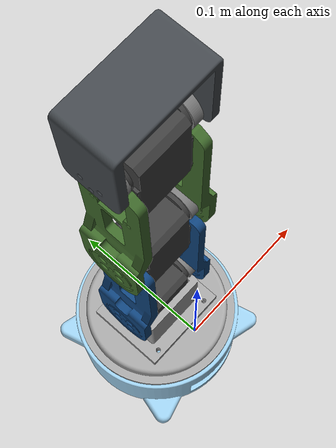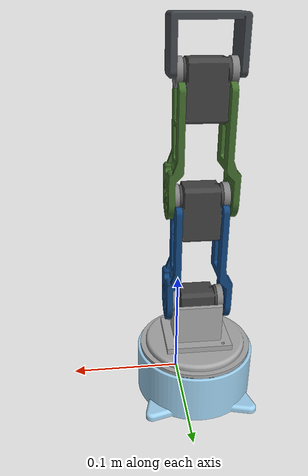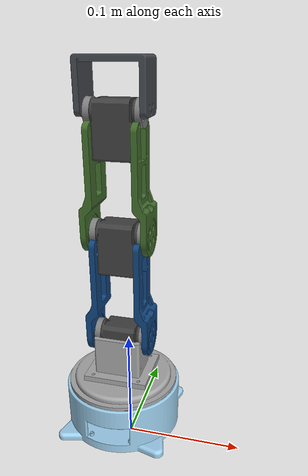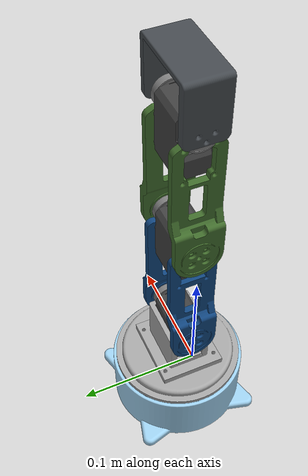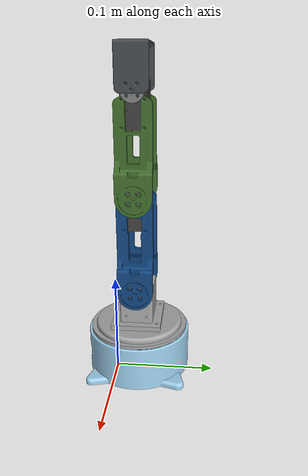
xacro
<?xml version="1.0"?>
<robot xmlns:xacro="http://www.ros.org/wiki/xacro" name="onshape_export">
    <xacro:arg name="initial_positions_file" default="initial_positions.yaml" />

    <!-- Import onshape_export urdf file -->
    <xacro:include filename="$(find ninni_robot_arm)/urdf/ninni_arm.urdf" />

    <!-- Import control_xacro -->
    <xacro:include filename="onshape_export.ros2_control.xacro" />

    <xacro:onshape_export_ros2_control name="FakeSystem" initial_positions_file="$(arg initial_positions_file)"/>

</robot>

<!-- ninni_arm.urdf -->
<!-- Generated using onshape-to-robot -->
<!-- Onshape https://cad.onshape.com/documents/b026964aa62daf9c1ecc4815/w/b181745cba52742b3ffb21e6/e/5ac1da73cba8f2619ef0b056 -->
<robot name="onshape_export">
  <!-- Link base_of_shoulder -->
  <link name="base_of_shoulder">
    <inertial>
      <origin xyz="0 0 0" rpy="0 0 0"/>
      <mass value="0"/>
      <inertia ixx="0" ixy="0" ixz="0" iyy="0" iyz="0" izz="0"/>
    </inertial>
    <!-- Part j2_servo -->
    <visual>
      <origin xyz="-0.0127266 0.021403 0.0237284" rpy="-0 -0 -0"/>
      <geometry>
        <mesh filename="package://ninni_robot_arm/meshes/j2_servo.stl"/>
      </geometry>
      <material name="j2_servo_material">
        <color rgba="0.247059 0.247059 0.247059 1"/>
      </material>
    </visual>
    <collision>
      <origin xyz="-0.0127266 0.021403 0.0237284" rpy="-0 -0 -0"/>
      <geometry>
        <mesh filename="package://ninni_robot_arm/meshes/j2_servo.stl"/>
      </geometry>
    </collision>
    <!-- Part base_of_shoulder -->
    <visual>
      <origin xyz="-0.0133535 0.025576 0.00282843" rpy="0 -0 -1.5708"/>
      <geometry>
        <mesh filename="package://ninni_robot_arm/meshes/base_of_shoulder.stl"/>
      </geometry>
      <material name="base_of_shoulder_material">
        <color rgba="0.647059 0.647059 0.647059 1"/>
      </material>
    </visual>
    <collision>
      <origin xyz="-0.0133535 0.025576 0.00282843" rpy="0 -0 -1.5708"/>
      <geometry>
        <mesh filename="package://ninni_robot_arm/meshes/base_of_shoulder.stl"/>
      </geometry>
    </collision>
    <!-- Part socker_j1 -->
    <visual>
      <origin xyz="-0.0175265 0.021403 0.00282843" rpy="-0 -0 -0"/>
      <geometry>
        <mesh filename="package://ninni_robot_arm/meshes/socker_j1.stl"/>
      </geometry>
      <material name="socker_j1_material">
        <color rgba="0.647059 0.647059 0.647059 1"/>
      </material>
    </visual>
    <collision>
      <origin xyz="-0.0175265 0.021403 0.00282843" rpy="-0 -0 -0"/>
      <geometry>
        <mesh filename="package://ninni_robot_arm/meshes/socker_j1.stl"/>
      </geometry>
    </collision>
  </link>
  <!-- Link base_servo_board -->
  <link name="base_servo_board">
    <inertial>
      <origin xyz="0 0 0" rpy="0 0 0"/>
      <mass value="0"/>
      <inertia ixx="0" ixy="0" ixz="0" iyy="0" iyz="0" izz="0"/>
    </inertial>
    <!-- Part base_servo_board -->
    <visual>
      <origin xyz="-0.0038 -0 -0.0398" rpy="0 0 -0"/>
      <geometry>
        <mesh filename="package://ninni_robot_arm/meshes/base_servo_board.stl"/>
      </geometry>
      <material name="base_servo_board_material">
        <color rgba="0.615686 0.811765 0.929412 1"/>
      </material>
    </visual>
    <collision>
      <origin xyz="-0.0038 -0 -0.0398" rpy="0 0 -0"/>
      <geometry>
        <mesh filename="package://ninni_robot_arm/meshes/base_servo_board.stl"/>
      </geometry>
    </collision>
    <!-- Part servo_motor_sts3215_v10 -->
    <visual>
      <origin xyz="-0.0038 0 -0.0398" rpy="-0 0 -0"/>
      <geometry>
        <mesh filename="package://ninni_robot_arm/meshes/servo_motor_sts3215_v10.stl"/>
      </geometry>
      <material name="servo_motor_sts3215_v10_material">
        <color rgba="0.247059 0.247059 0.247059 1"/>
      </material>
    </visual>
    <collision>
      <origin xyz="-0.0038 0 -0.0398" rpy="-0 0 -0"/>
      <geometry>
        <mesh filename="package://ninni_robot_arm/meshes/servo_motor_sts3215_v10.stl"/>
      </geometry>
    </collision>
  </link>
  <!-- Joint from base_of_shoulder to base_servo_board -->
  <joint name="Servor_1_to_waist" type="revolute">
    <origin xyz="-0.0133535 0.021776 0.0426284" rpy="0 -0 -1.5708"/>
    <parent link="base_of_shoulder"/>
    <child link="base_servo_board"/>
    <axis xyz="0 0 1"/>
    <limit effort="10" velocity="10" lower="-6.28319" upper="6.28319"/>
  </joint>
  <!-- Link shoulder_left -->
  <link name="shoulder_left">
    <inertial>
      <origin xyz="0 0 0" rpy="0 0 0"/>
      <mass value="0"/>
      <inertia ixx="0" ixy="0" ixz="0" iyy="0" iyz="0" izz="0"/>
    </inertial>
    <!-- Part shoulder_left -->
    <visual>
      <origin xyz="-0 -0.0679 0.0176" rpy="-1.5708 -1.5708 0"/>
      <geometry>
        <mesh filename="package://ninni_robot_arm/meshes/shoulder_left.stl"/>
      </geometry>
      <material name="shoulder_left_material">
        <color rgba="0.0627451 0.266667 0.490196 1"/>
      </material>
    </visual>
    <collision>
      <origin xyz="-0 -0.0679 0.0176" rpy="-1.5708 -1.5708 0"/>
      <geometry>
        <mesh filename="package://ninni_robot_arm/meshes/shoulder_left.stl"/>
      </geometry>
    </collision>
    <!-- Part left_cover -->
    <visual>
      <origin xyz="-0 -0.0679 0.0176" rpy="-1.5708 -1.5708 0"/>
      <geometry>
        <mesh filename="package://ninni_robot_arm/meshes/left_cover.stl"/>
      </geometry>
      <material name="left_cover_material">
        <color rgba="0.498039 0.498039 0.498039 1"/>
      </material>
    </visual>
    <collision>
      <origin xyz="-0 -0.0679 0.0176" rpy="-1.5708 -1.5708 0"/>
      <geometry>
        <mesh filename="package://ninni_robot_arm/meshes/left_cover.stl"/>
      </geometry>
    </collision>
    <!-- Part j3_servo -->
    <visual>
      <origin xyz="0 -0.0679 0.0175809" rpy="-1.5708 -1.5708 0"/>
      <geometry>
        <mesh filename="package://ninni_robot_arm/meshes/j3_servo.stl"/>
      </geometry>
      <material name="j3_servo_material">
        <color rgba="0.247059 0.247059 0.247059 1"/>
      </material>
    </visual>
    <collision>
      <origin xyz="0 -0.0679 0.0175809" rpy="-1.5708 -1.5708 0"/>
      <geometry>
        <mesh filename="package://ninni_robot_arm/meshes/j3_servo.stl"/>
      </geometry>
    </collision>
    <!-- Part right_cover -->
    <visual>
      <origin xyz="0 -0.0679 0.0175617" rpy="-1.5708 -1.5708 0"/>
      <geometry>
        <mesh filename="package://ninni_robot_arm/meshes/right_cover.stl"/>
      </geometry>
      <material name="right_cover_material">
        <color rgba="0.498039 0.498039 0.498039 1"/>
      </material>
    </visual>
    <collision>
      <origin xyz="0 -0.0679 0.0175617" rpy="-1.5708 -1.5708 0"/>
      <geometry>
        <mesh filename="package://ninni_robot_arm/meshes/right_cover.stl"/>
      </geometry>
    </collision>
    <!-- Part shoulder_right -->
    <visual>
      <origin xyz="0 -0.0679 0.0175617" rpy="-1.5708 -1.5708 0"/>
      <geometry>
        <mesh filename="package://ninni_robot_arm/meshes/shoulder_right.stl"/>
      </geometry>
      <material name="shoulder_right_material">
        <color rgba="0.0627451 0.266667 0.490196 1"/>
      </material>
    </visual>
    <collision>
      <origin xyz="0 -0.0679 0.0175617" rpy="-1.5708 -1.5708 0"/>
      <geometry>
        <mesh filename="package://ninni_robot_arm/meshes/shoulder_right.stl"/>
      </geometry>
    </collision>
  </link>
  <!-- Link left_cover -->
  <link name="left_cover">
    <inertial>
      <origin xyz="0 0 0" rpy="0 0 0"/>
      <mass value="0"/>
      <inertia ixx="0" ixy="0" ixz="0" iyy="0" iyz="0" izz="0"/>
    </inertial>
    <!-- Part right_cover_2 -->
    <visual>
      <origin xyz="-0 -0.0679 0.0175617" rpy="-1.5708 -1.5708 0"/>
      <geometry>
        <mesh filename="package://ninni_robot_arm/meshes/right_cover.stl"/>
      </geometry>
      <material name="right_cover_2_material">
        <color rgba="0.498039 0.498039 0.498039 1"/>
      </material>
    </visual>
    <collision>
      <origin xyz="-0 -0.0679 0.0175617" rpy="-1.5708 -1.5708 0"/>
      <geometry>
        <mesh filename="package://ninni_robot_arm/meshes/right_cover.stl"/>
      </geometry>
    </collision>
    <!-- Part elbow_left -->
    <visual>
      <origin xyz="0 -0.0539 0.0176" rpy="-1.5708 -1.5708 0"/>
      <geometry>
        <mesh filename="package://ninni_robot_arm/meshes/elbow_left.stl"/>
      </geometry>
      <material name="elbow_left_material">
        <color rgba="0.25098 0.419608 0.172549 1"/>
      </material>
    </visual>
    <collision>
      <origin xyz="0 -0.0539 0.0176" rpy="-1.5708 -1.5708 0"/>
      <geometry>
        <mesh filename="package://ninni_robot_arm/meshes/elbow_left.stl"/>
      </geometry>
    </collision>
    <!-- Part elbow_right -->
    <visual>
      <origin xyz="-0 -0.0539 0.0175617" rpy="-1.5708 -1.5708 0"/>
      <geometry>
        <mesh filename="package://ninni_robot_arm/meshes/elbow_right.stl"/>
      </geometry>
      <material name="elbow_right_material">
        <color rgba="0.25098 0.419608 0.172549 1"/>
      </material>
    </visual>
    <collision>
      <origin xyz="-0 -0.0539 0.0175617" rpy="-1.5708 -1.5708 0"/>
      <geometry>
        <mesh filename="package://ninni_robot_arm/meshes/elbow_right.stl"/>
      </geometry>
    </collision>
    <!-- Part left_cover_2 -->
    <visual>
      <origin xyz="-0 -0.0679 0.0176" rpy="-1.5708 -1.5708 0"/>
      <geometry>
        <mesh filename="package://ninni_robot_arm/meshes/left_cover.stl"/>
      </geometry>
      <material name="left_cover_2_material">
        <color rgba="0.498039 0.498039 0.498039 1"/>
      </material>
    </visual>
    <collision>
      <origin xyz="-0 -0.0679 0.0176" rpy="-1.5708 -1.5708 0"/>
      <geometry>
        <mesh filename="package://ninni_robot_arm/meshes/left_cover.stl"/>
      </geometry>
    </collision>
    <!-- Part j3_servo_2 -->
    <visual>
      <origin xyz="-0 -0.0539 0.0175809" rpy="-1.5708 -1.5708 0"/>
      <geometry>
        <mesh filename="package://ninni_robot_arm/meshes/j3_servo__2.stl"/>
      </geometry>
      <material name="j3_servo_2_material">
        <color rgba="0.247059 0.247059 0.247059 1"/>
      </material>
    </visual>
    <collision>
      <origin xyz="-0 -0.0539 0.0175809" rpy="-1.5708 -1.5708 0"/>
      <geometry>
        <mesh filename="package://ninni_robot_arm/meshes/j3_servo__2.stl"/>
      </geometry>
    </collision>
  </link>
  <!-- Link left_cover_2 -->
  <link name="left_cover_2">
    <inertial>
      <origin xyz="0 0 0" rpy="0 0 0"/>
      <mass value="0"/>
      <inertia ixx="0" ixy="0" ixz="0" iyy="0" iyz="0" izz="0"/>
    </inertial>
    <!-- Part left_cover_3 -->
    <visual>
      <origin xyz="-0 -0.1499 0.0581" rpy="-1.5708 -1.5708 0"/>
      <geometry>
        <mesh filename="package://ninni_robot_arm/meshes/left_cover__2.stl"/>
      </geometry>
      <material name="left_cover_3_material">
        <color rgba="0.498039 0.498039 0.498039 1"/>
      </material>
    </visual>
    <collision>
      <origin xyz="-0 -0.1499 0.0581" rpy="-1.5708 -1.5708 0"/>
      <geometry>
        <mesh filename="package://ninni_robot_arm/meshes/left_cover__2.stl"/>
      </geometry>
    </collision>
    <!-- Part left_cover_4 -->
    <visual>
      <origin xyz="-0 -0.0539 0.0176" rpy="-1.5708 -1.5708 0"/>
      <geometry>
        <mesh filename="package://ninni_robot_arm/meshes/left_cover__3.stl"/>
      </geometry>
      <material name="left_cover_4_material">
        <color rgba="0.498039 0.498039 0.498039 1"/>
      </material>
    </visual>
    <collision>
      <origin xyz="-0 -0.0539 0.0176" rpy="-1.5708 -1.5708 0"/>
      <geometry>
        <mesh filename="package://ninni_robot_arm/meshes/left_cover__3.stl"/>
      </geometry>
    </collision>
    <!-- Part part_11 -->
    <visual>
      <origin xyz="-0 -0.1499 0.0176" rpy="-1.5708 -1.5708 0"/>
      <geometry>
        <mesh filename="package://ninni_robot_arm/meshes/part_11.stl"/>
      </geometry>
      <material name="part_11_material">
        <color rgba="0.262745 0.282353 0.301961 1"/>
      </material>
    </visual>
    <collision>
      <origin xyz="-0 -0.1499 0.0176" rpy="-1.5708 -1.5708 0"/>
      <geometry>
        <mesh filename="package://ninni_robot_arm/meshes/part_11.stl"/>
      </geometry>
    </collision>
  </link>
  <!-- Joint from left_cover to left_cover_2 -->
  <joint name="left_3_arm" type="revolute">
    <origin xyz="0 0.096 -1.91259e-05" rpy="0 0 0"/>
    <parent link="left_cover"/>
    <child link="left_cover_2"/>
    <axis xyz="0 0 1"/>
    <limit effort="10" velocity="10" lower="-2.0944" upper="2.0944"/>
  </joint>
  <!-- Joint from shoulder_left to left_cover -->
  <joint name="left_2_arm" type="revolute">
    <origin xyz="0 0.096 -1.91259e-05" rpy="0 -0 0"/>
    <parent link="shoulder_left"/>
    <child link="left_cover"/>
    <axis xyz="0 0 1"/>
    <limit effort="10" velocity="10" lower="-2.0944" upper="2.0944"/>
  </joint>
  <!-- Joint from base_of_shoulder to shoulder_left -->
  <joint name="left_1_arm" type="revolute">
    <origin xyz="0.000373062 -0.0169731 0.049" rpy="1.5708 -0 -3.14159"/>
    <parent link="base_servo_board"/>
    <child link="shoulder_left"/>
    <axis xyz="0 0 1"/>
    <limit effort="10" velocity="10" lower="-1.5708" upper="1.5708"/>
  </joint>
</robot>
